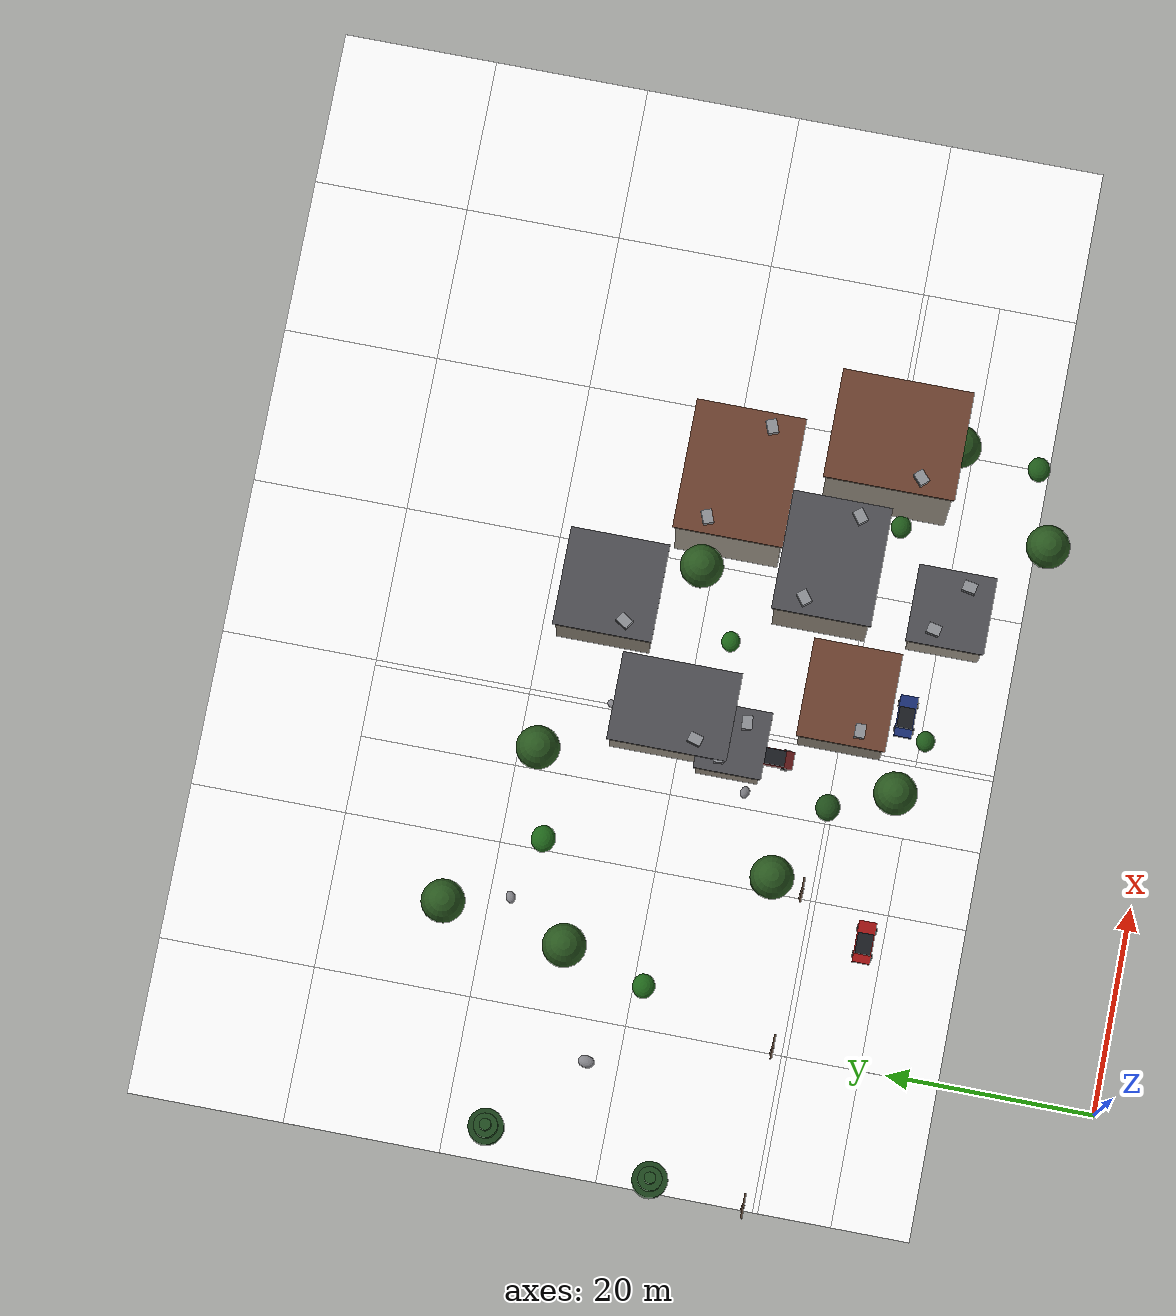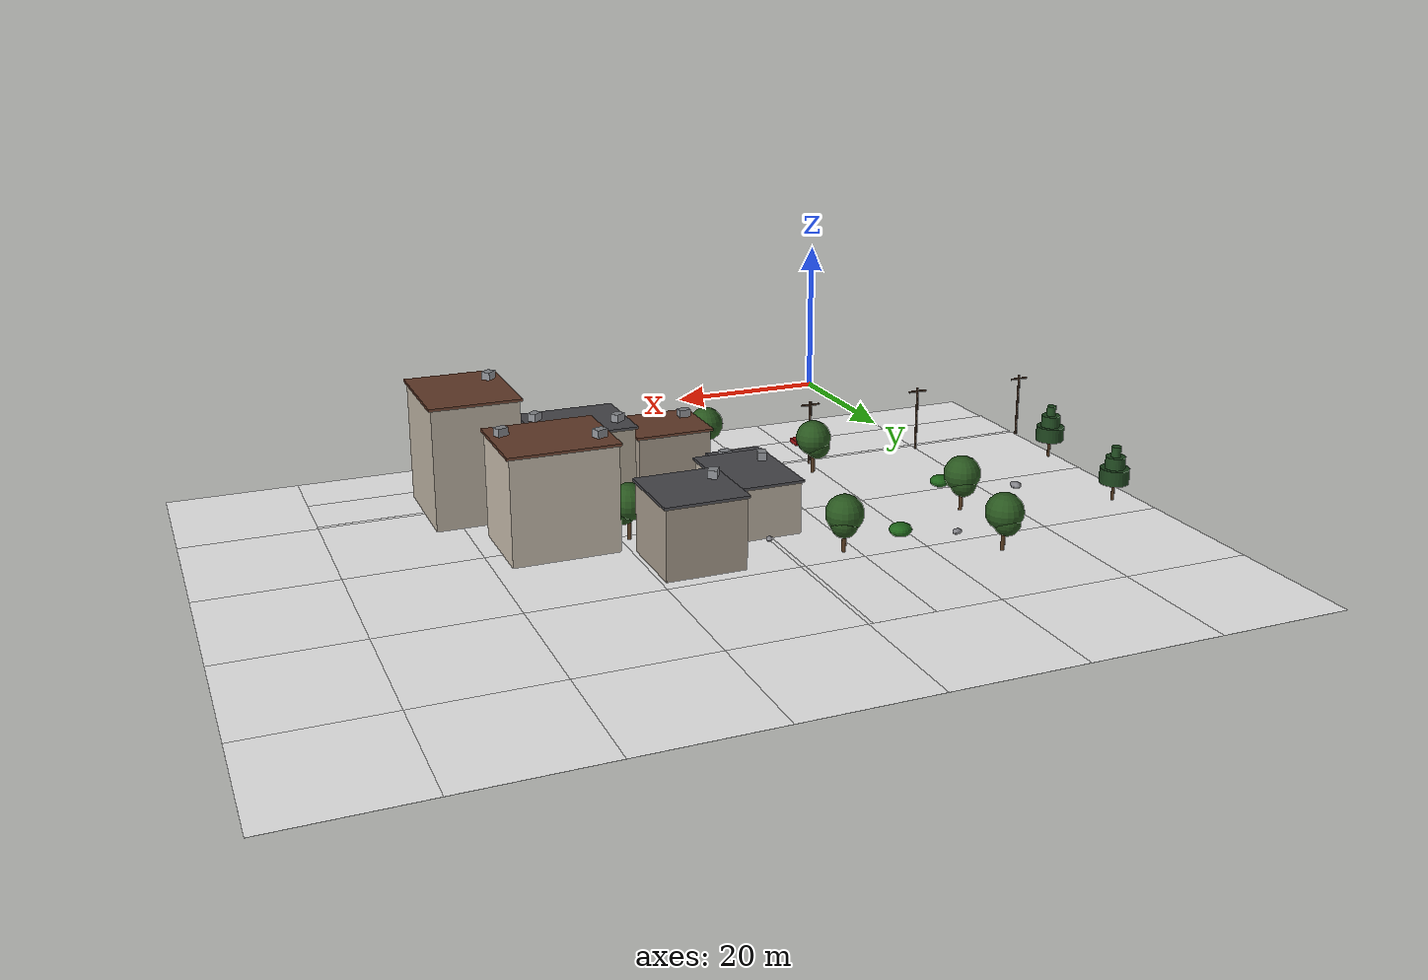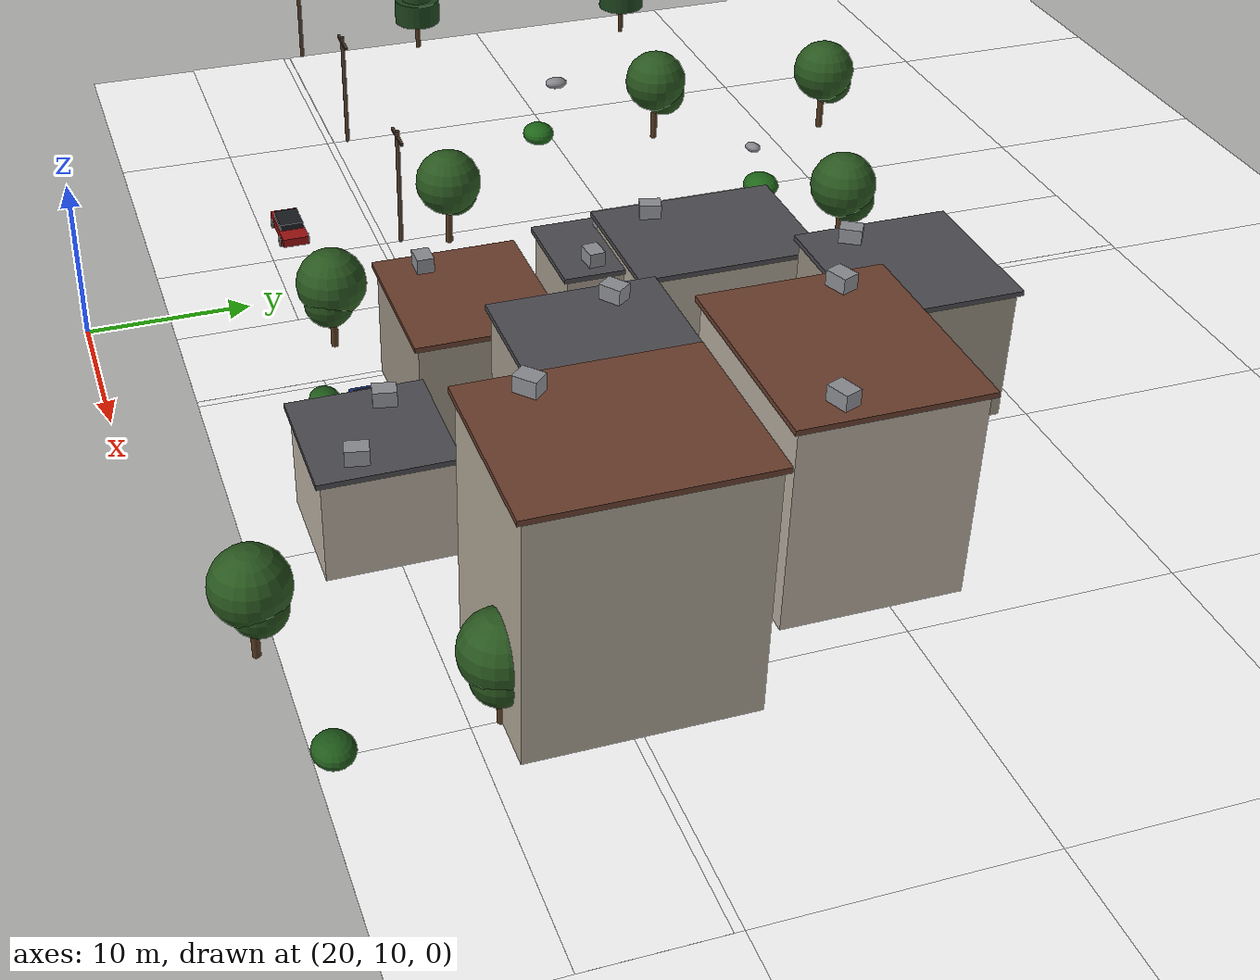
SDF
<sdf version="1.9">
 <world name="iris_runway">
  <model name="ground">
   <static>true</static>
   <link name="link">
    <collision name="c">
     <geometry><plane><normal>0 0 1</normal><size>2000 2000</size></plane></geometry>
    </collision>
   </link>
  </model>
  <include>
   <name>g_5_7</name>
   <pose degrees="true">-7.5 22.5 0.01 0 0 0</pose>
   <uri>model://grass_tile</uri>
  </include>
  <include>
   <name>g_5_8</name>
   <pose degrees="true">-7.5 37.5 0.01 0 0 180</pose>
   <uri>model://grass_tile</uri>
  </include>
  <include>
   <name>g_5_9</name>
   <pose degrees="true">-7.5 52.5 0.01 0 0 0</pose>
   <uri>model://grass_tile</uri>
  </include>
  <include>
   <name>g_5_10</name>
   <pose degrees="true">-7.5 67.5 0.01 0 0 180</pose>
   <uri>model://grass_tile</uri>
  </include>
  <include>
   <name>g_5_11</name>
   <pose degrees="true">-7.5 82.5 0.01 0 0 0</pose>
   <uri>model://grass_tile</uri>
  </include>
  <include>
   <name>g_6_7</name>
   <pose degrees="true">7.5 22.5 0.01 0 0 270</pose>
   <uri>model://grass_tile</uri>
  </include>
  <include>
   <name>g_6_8</name>
   <pose degrees="true">7.5 37.5 0.01 0 0 90</pose>
   <uri>model://grass_tile</uri>
  </include>
  <include>
   <name>g_6_9</name>
   <pose degrees="true">7.5 52.5 0.01 0 0 270</pose>
   <uri>model://grass_tile</uri>
  </include>
  <include>
   <name>g_6_10</name>
   <pose degrees="true">7.5 67.5 0.01 0 0 90</pose>
   <uri>model://grass_tile</uri>
  </include>
  <include>
   <name>g_6_11</name>
   <pose degrees="true">7.5 82.5 0.01 0 0 270</pose>
   <uri>model://grass_tile</uri>
  </include>
  <include>
   <name>g_7_7</name>
   <pose degrees="true">22.5 22.5 0.01 0 0 90</pose>
   <uri>model://grass_tile</uri>
  </include>
  <include>
   <name>g_7_8</name>
   <pose degrees="true">22.5 37.5 0.01 0 0 270</pose>
   <uri>model://grass_tile</uri>
  </include>
  <include>
   <name>g_7_9</name>
   <pose degrees="true">22.5 52.5 0.01 0 0 90</pose>
   <uri>model://grass_tile</uri>
  </include>
  <include>
   <name>g_7_10</name>
   <pose degrees="true">22.5 67.5 0.01 0 0 270</pose>
   <uri>model://grass_tile_worn</uri>
  </include>
  <include>
   <name>g_7_11</name>
   <pose degrees="true">22.5 82.5 0.01 0 0 90</pose>
   <uri>model://grass_tile</uri>
  </include>
  <include>
   <name>g_8_7</name>
   <pose degrees="true">37.5 22.5 0.01 0 0 270</pose>
   <uri>model://grass_tile</uri>
  </include>
  <include>
   <name>g_8_8</name>
   <pose degrees="true">37.5 37.5 0.01 0 0 90</pose>
   <uri>model://grass_tile</uri>
  </include>
  <include>
   <name>g_8_9</name>
   <pose degrees="true">37.5 52.5 0.01 0 0 270</pose>
   <uri>model://grass_tile</uri>
  </include>
  <include>
   <name>g_8_10</name>
   <pose degrees="true">37.5 67.5 0.01 0 0 90</pose>
   <uri>model://grass_tile</uri>
  </include>
  <include>
   <name>g_8_11</name>
   <pose degrees="true">37.5 82.5 0.01 0 0 270</pose>
   <uri>model://grass_tile_worn</uri>
  </include>
  <include>
   <name>g_9_7</name>
   <pose degrees="true">52.5 22.5 0.01 0 0 90</pose>
   <uri>model://grass_tile</uri>
  </include>
  <include>
   <name>g_9_8</name>
   <pose degrees="true">52.5 37.5 0.01 0 0 270</pose>
   <uri>model://grass_tile</uri>
  </include>
  <include>
   <name>g_9_9</name>
   <pose degrees="true">52.5 52.5 0.01 0 0 90</pose>
   <uri>model://grass_tile</uri>
  </include>
  <include>
   <name>g_9_10</name>
   <pose degrees="true">52.5 67.5 0.01 0 0 270</pose>
   <uri>model://grass_tile</uri>
  </include>
  <include>
   <name>g_9_11</name>
   <pose degrees="true">52.5 82.5 0.01 0 0 90</pose>
   <uri>model://grass_tile_worn</uri>
  </include>
  <include>
   <name>g_10_7</name>
   <pose degrees="true">67.5 22.5 0.01 0 0 270</pose>
   <uri>model://grass_tile</uri>
  </include>
  <include>
   <name>g_10_8</name>
   <pose degrees="true">67.5 37.5 0.01 0 0 90</pose>
   <uri>model://grass_tile</uri>
  </include>
  <include>
   <name>g_10_9</name>
   <pose degrees="true">67.5 52.5 0.01 0 0 270</pose>
   <uri>model://grass_tile</uri>
  </include>
  <include>
   <name>g_10_10</name>
   <pose degrees="true">67.5 67.5 0.01 0 0 90</pose>
   <uri>model://grass_tile</uri>
  </include>
  <include>
   <name>g_10_11</name>
   <pose degrees="true">67.5 82.5 0.01 0 0 270</pose>
   <uri>model://grass_tile</uri>
  </include>
  <include>
   <name>g_11_7</name>
   <pose degrees="true">82.5 22.5 0.01 0 0 180</pose>
   <uri>model://grass_tile</uri>
  </include>
  <include>
   <name>g_11_8</name>
   <pose degrees="true">82.5 37.5 0.01 0 0 0</pose>
   <uri>model://grass_tile_worn</uri>
  </include>
  <include>
   <name>g_11_9</name>
   <pose degrees="true">82.5 52.5 0.01 0 0 180</pose>
   <uri>model://grass_tile_worn</uri>
  </include>
  <include>
   <name>g_11_10</name>
   <pose degrees="true">82.5 67.5 0.01 0 0 0</pose>
   <uri>model://grass_tile</uri>
  </include>
  <include>
   <name>g_11_11</name>
   <pose degrees="true">82.5 82.5 0.01 0 0 180</pose>
   <uri>model://grass_tile_worn</uri>
  </include>
  <include><name>tree_0</name><pose>26 24 0 0 0 0.0</pose><uri>model://tree_oak</uri></include>
  <include><name>tree_9</name><pose>-14 40 0 0 0 0.1</pose><uri>model://tree_pine</uri></include>
  <include><name>tree_10</name><pose>48 36 0 0 0 0.8</pose><uri>model://tree_oak</uri></include>
  <include><name>tree_16</name><pose>6 52 0 0 0 1.9</pose><uri>model://tree_oak</uri></include>
  <include><name>tree_18</name><pose>60 24 0 0 0 0.2</pose><uri>model://tree_oak</uri></include>
  <include><name>tree_20</name><pose>24 58 0 0 0 1.6</pose><uri>model://tree_oak</uri></include>
  <include><name>tree_26</name><pose>16 34 0 0 0 2.7</pose><uri>model://tree_oak</uri></include>
  <include><name>tree_28</name><pose>52 14 0 0 0 1.0</pose><uri>model://tree_oak</uri></include>
  <include><name>tree_31</name><pose>-12 56 0 0 0 3.1</pose><uri>model://tree_pine</uri></include>
  <include><name>tree_34</name><pose>8 64 0 0 0 2.1</pose><uri>model://tree_oak</uri></include>
  <include><name>tree_36</name><pose>44 46 0 0 0 0.4</pose><uri>model://tree_oak</uri></include>
  <model name="bldg_0">
   <static>true</static>
   <pose>34 30 0 0 0 0</pose>
   <link name="l">
    <visual name="walls">
     <pose degrees="true">0 0 3.5 0 0 0</pose>
     <geometry><box><size>9 8 7</size></box></geometry>
     <material>
      <ambient>0.34 0.32 0.29 1</ambient>
      <diffuse>0.62 0.58 0.52 1</diffuse>
      <pbr><metal><roughness>0.85</roughness><metalness>0.0</metalness></metal></pbr>
     </material>
    </visual>
    <visual name="roof">
     <pose degrees="true">0 0 7.15 0 0 0</pose>
     <geometry><box><size>9.5 8.5 0.3</size></box></geometry>
     <material>
      <ambient>0.23 0.14 0.10 1</ambient>
      <diffuse>0.42 0.25 0.18 1</diffuse>
      <pbr><metal><roughness>0.9</roughness><metalness>0.0</metalness></metal></pbr>
     </material>
    </visual>
    <collision name="c">
     <pose>0 0 3.65 0 0 0</pose>
     <geometry><box><size>9 8 7.3</size></box></geometry>
    </collision>
    <visual name="ac_0">
     <pose degrees="true">-3.3 -1.6 7.75 0 0 0</pose>
     <geometry><box><size>1.3 1.0 0.9</size></box></geometry>
     <material>
      <ambient>0.30 0.31 0.32 1</ambient>
      <diffuse>0.55 0.56 0.58 1</diffuse>
      <pbr><metal><roughness>0.5</roughness><metalness>0.6</metalness></metal></pbr>
     </material>
    </visual>
   </link>
  </model>
  <model name="bldg_1">
   <static>true</static>
   <pose>46 34 0 0 0 0</pose>
   <link name="l">
    <visual name="walls">
     <pose degrees="true">0 0 5.0 0 0 0</pose>
     <geometry><box><size>11 9 10</size></box></geometry>
     <material>
      <ambient>0.36 0.34 0.31 1</ambient>
      <diffuse>0.66 0.62 0.56 1</diffuse>
      <pbr><metal><roughness>0.85</roughness><metalness>0.0</metalness></metal></pbr>
     </material>
    </visual>
    <visual name="roof">
     <pose degrees="true">0 0 10.15 0 0 0</pose>
     <geometry><box><size>11.5 9.5 0.3</size></box></geometry>
     <material>
      <ambient>0.17 0.17 0.18 1</ambient>
      <diffuse>0.30 0.30 0.32 1</diffuse>
      <pbr><metal><roughness>0.9</roughness><metalness>0.0</metalness></metal></pbr>
     </material>
    </visual>
    <collision name="c">
     <pose>0 0 5.15 0 0 0</pose>
     <geometry><box><size>11 9 10.3</size></box></geometry>
    </collision>
    <visual name="ac_0">
     <pose degrees="true">4.3 -1.9 10.75 0 0 37</pose>
     <geometry><box><size>1.3 1.0 0.9</size></box></geometry>
     <material>
      <ambient>0.30 0.31 0.32 1</ambient>
      <diffuse>0.55 0.56 0.58 1</diffuse>
      <pbr><metal><roughness>0.5</roughness><metalness>0.6</metalness></metal></pbr>
     </material>
    </visual>
    <visual name="ac_1">
     <pose degrees="true">-4.3 1.9 10.75 0 0 37</pose>
     <geometry><box><size>1.3 1.0 0.9</size></box></geometry>
     <material>
      <ambient>0.30 0.31 0.32 1</ambient>
      <diffuse>0.55 0.56 0.58 1</diffuse>
      <pbr><metal><roughness>0.5</roughness><metalness>0.6</metalness></metal></pbr>
     </material>
    </visual>
   </link>
  </model>
  <model name="bldg_2">
   <static>true</static>
   <pose>30 46 0 0 0 0</pose>
   <link name="l">
    <visual name="walls">
     <pose degrees="true">0 0 3.0 0 0 0</pose>
     <geometry><box><size>8 11 6</size></box></geometry>
     <material>
      <ambient>0.39 0.36 0.33 1</ambient>
      <diffuse>0.70 0.66 0.60 1</diffuse>
      <pbr><metal><roughness>0.85</roughness><metalness>0.0</metalness></metal></pbr>
     </material>
    </visual>
    <visual name="roof">
     <pose degrees="true">0 0 6.15 0 0 0</pose>
     <geometry><box><size>8.5 11.5 0.3</size></box></geometry>
     <material>
      <ambient>0.17 0.17 0.18 1</ambient>
      <diffuse>0.30 0.30 0.32 1</diffuse>
      <pbr><metal><roughness>0.9</roughness><metalness>0.0</metalness></metal></pbr>
     </material>
    </visual>
    <collision name="c">
     <pose>0 0 3.15 0 0 0</pose>
     <geometry><box><size>8 11 6.3</size></box></geometry>
    </collision>
    <visual name="ac_0">
     <pose degrees="true">-2.8 -2.5 6.75 0 0 74</pose>
     <geometry><box><size>1.3 1.0 0.9</size></box></geometry>
     <material>
      <ambient>0.30 0.31 0.32 1</ambient>
      <diffuse>0.55 0.56 0.58 1</diffuse>
      <pbr><metal><roughness>0.5</roughness><metalness>0.6</metalness></metal></pbr>
     </material>
    </visual>
   </link>
  </model>
  <model name="bldg_3">
   <static>true</static>
   <pose>52 44 0 0 0 0</pose>
   <link name="l">
    <visual name="walls">
     <pose degrees="true">0 0 6.0 0 0 0</pose>
     <geometry><box><size>12 10 12</size></box></geometry>
     <material>
      <ambient>0.41 0.39 0.35 1</ambient>
      <diffuse>0.74 0.70 0.64 1</diffuse>
      <pbr><metal><roughness>0.85</roughness><metalness>0.0</metalness></metal></pbr>
     </material>
    </visual>
    <visual name="roof">
     <pose degrees="true">0 0 12.15 0 0 0</pose>
     <geometry><box><size>12.5 10.5 0.3</size></box></geometry>
     <material>
      <ambient>0.23 0.14 0.10 1</ambient>
      <diffuse>0.42 0.25 0.18 1</diffuse>
      <pbr><metal><roughness>0.9</roughness><metalness>0.0</metalness></metal></pbr>
     </material>
    </visual>
    <collision name="c">
     <pose>0 0 6.15 0 0 0</pose>
     <geometry><box><size>12 10 12.3</size></box></geometry>
    </collision>
    <visual name="ac_0">
     <pose degrees="true">4.8 -2.2 12.75 0 0 21</pose>
     <geometry><box><size>1.3 1.0 0.9</size></box></geometry>
     <material>
      <ambient>0.30 0.31 0.32 1</ambient>
      <diffuse>0.55 0.56 0.58 1</diffuse>
      <pbr><metal><roughness>0.5</roughness><metalness>0.6</metalness></metal></pbr>
     </material>
    </visual>
    <visual name="ac_1">
     <pose degrees="true">-4.8 2.2 12.75 0 0 21</pose>
     <geometry><box><size>1.3 1.0 0.9</size></box></geometry>
     <material>
      <ambient>0.30 0.31 0.32 1</ambient>
      <diffuse>0.55 0.56 0.58 1</diffuse>
      <pbr><metal><roughness>0.5</roughness><metalness>0.6</metalness></metal></pbr>
     </material>
    </visual>
   </link>
  </model>
  <model name="bldg_4">
   <static>true</static>
   <pose>40 54 0 0 0 0</pose>
   <link name="l">
    <visual name="walls">
     <pose degrees="true">0 0 4.0 0 0 0</pose>
     <geometry><box><size>9 9 8</size></box></geometry>
     <material>
      <ambient>0.34 0.32 0.29 1</ambient>
      <diffuse>0.62 0.58 0.52 1</diffuse>
      <pbr><metal><roughness>0.85</roughness><metalness>0.0</metalness></metal></pbr>
     </material>
    </visual>
    <visual name="roof">
     <pose degrees="true">0 0 8.15 0 0 0</pose>
     <geometry><box><size>9.5 9.5 0.3</size></box></geometry>
     <material>
      <ambient>0.17 0.17 0.18 1</ambient>
      <diffuse>0.30 0.30 0.32 1</diffuse>
      <pbr><metal><roughness>0.9</roughness><metalness>0.0</metalness></metal></pbr>
     </material>
    </visual>
    <collision name="c">
     <pose>0 0 4.15 0 0 0</pose>
     <geometry><box><size>9 9 8.3</size></box></geometry>
    </collision>
    <visual name="ac_0">
     <pose degrees="true">-3.3 -1.9 8.75 0 0 58</pose>
     <geometry><box><size>1.3 1.0 0.9</size></box></geometry>
     <material>
      <ambient>0.30 0.31 0.32 1</ambient>
      <diffuse>0.55 0.56 0.58 1</diffuse>
      <pbr><metal><roughness>0.5</roughness><metalness>0.6</metalness></metal></pbr>
     </material>
    </visual>
   </link>
  </model>
  <model name="bldg_5">
   <static>true</static>
   <pose>28 40 0 0 0 0</pose>
   <link name="l">
    <visual name="walls">
     <pose degrees="true">0 0 2.5 0 0 0</pose>
     <geometry><box><size>6 6 5</size></box></geometry>
     <material>
      <ambient>0.36 0.34 0.31 1</ambient>
      <diffuse>0.66 0.62 0.56 1</diffuse>
      <pbr><metal><roughness>0.85</roughness><metalness>0.0</metalness></metal></pbr>
     </material>
    </visual>
    <visual name="roof">
     <pose degrees="true">0 0 5.15 0 0 0</pose>
     <geometry><box><size>6.5 6.5 0.3</size></box></geometry>
     <material>
      <ambient>0.17 0.17 0.18 1</ambient>
      <diffuse>0.30 0.30 0.32 1</diffuse>
      <pbr><metal><roughness>0.9</roughness><metalness>0.0</metalness></metal></pbr>
     </material>
    </visual>
    <collision name="c">
     <pose>0 0 2.65 0 0 0</pose>
     <geometry><box><size>6 6 5.3</size></box></geometry>
    </collision>
    <visual name="ac_0">
     <pose degrees="true">1.8 -1.0 5.75 0 0 5</pose>
     <geometry><box><size>1.3 1.0 0.9</size></box></geometry>
     <material>
      <ambient>0.30 0.31 0.32 1</ambient>
      <diffuse>0.55 0.56 0.58 1</diffuse>
      <pbr><metal><roughness>0.5</roughness><metalness>0.6</metalness></metal></pbr>
     </material>
    </visual>
    <visual name="ac_1">
     <pose degrees="true">-1.8 1.0 5.75 0 0 5</pose>
     <geometry><box><size>1.3 1.0 0.9</size></box></geometry>
     <material>
      <ambient>0.30 0.31 0.32 1</ambient>
      <diffuse>0.55 0.56 0.58 1</diffuse>
      <pbr><metal><roughness>0.5</roughness><metalness>0.6</metalness></metal></pbr>
     </material>
    </visual>
   </link>
  </model>
  <model name="bldg_6">
   <static>true</static>
   <pose>58 30 0 0 0 0</pose>
   <link name="l">
    <visual name="walls">
     <pose degrees="true">0 0 7.0 0 0 0</pose>
     <geometry><box><size>10 12 14</size></box></geometry>
     <material>
      <ambient>0.39 0.36 0.33 1</ambient>
      <diffuse>0.70 0.66 0.60 1</diffuse>
      <pbr><metal><roughness>0.85</roughness><metalness>0.0</metalness></metal></pbr>
     </material>
    </visual>
    <visual name="roof">
     <pose degrees="true">0 0 14.15 0 0 0</pose>
     <geometry><box><size>10.5 12.5 0.3</size></box></geometry>
     <material>
      <ambient>0.23 0.14 0.10 1</ambient>
      <diffuse>0.42 0.25 0.18 1</diffuse>
      <pbr><metal><roughness>0.9</roughness><metalness>0.0</metalness></metal></pbr>
     </material>
    </visual>
    <collision name="c">
     <pose>0 0 7.15 0 0 0</pose>
     <geometry><box><size>10 12 14.3</size></box></geometry>
    </collision>
    <visual name="ac_0">
     <pose degrees="true">-3.8 -2.8 14.75 0 0 42</pose>
     <geometry><box><size>1.3 1.0 0.9</size></box></geometry>
     <material>
      <ambient>0.30 0.31 0.32 1</ambient>
      <diffuse>0.55 0.56 0.58 1</diffuse>
      <pbr><metal><roughness>0.5</roughness><metalness>0.6</metalness></metal></pbr>
     </material>
    </visual>
   </link>
  </model>
  <model name="bldg_7">
   <static>true</static>
   <pose>44 22 0 0 0 0</pose>
   <link name="l">
    <visual name="walls">
     <pose degrees="true">0 0 3.0 0 0 0</pose>
     <geometry><box><size>7 7 6</size></box></geometry>
     <material>
      <ambient>0.41 0.39 0.35 1</ambient>
      <diffuse>0.74 0.70 0.64 1</diffuse>
      <pbr><metal><roughness>0.85</roughness><metalness>0.0</metalness></metal></pbr>
     </material>
    </visual>
    <visual name="roof">
     <pose degrees="true">0 0 6.15 0 0 0</pose>
     <geometry><box><size>7.5 7.5 0.3</size></box></geometry>
     <material>
      <ambient>0.17 0.17 0.18 1</ambient>
      <diffuse>0.30 0.30 0.32 1</diffuse>
      <pbr><metal><roughness>0.9</roughness><metalness>0.0</metalness></metal></pbr>
     </material>
    </visual>
    <collision name="c">
     <pose>0 0 3.15 0 0 0</pose>
     <geometry><box><size>7 7 6.3</size></box></geometry>
    </collision>
    <visual name="ac_0">
     <pose degrees="true">2.3 -1.3 6.75 0 0 79</pose>
     <geometry><box><size>1.3 1.0 0.9</size></box></geometry>
     <material>
      <ambient>0.30 0.31 0.32 1</ambient>
      <diffuse>0.55 0.56 0.58 1</diffuse>
      <pbr><metal><roughness>0.5</roughness><metalness>0.6</metalness></metal></pbr>
     </material>
    </visual>
    <visual name="ac_1">
     <pose degrees="true">-2.3 1.3 6.75 0 0 79</pose>
     <geometry><box><size>1.3 1.0 0.9</size></box></geometry>
     <material>
      <ambient>0.30 0.31 0.32 1</ambient>
      <diffuse>0.55 0.56 0.58 1</diffuse>
      <pbr><metal><roughness>0.5</roughness><metalness>0.6</metalness></metal></pbr>
     </material>
    </visual>
   </link>
  </model>
  <model name="pole_2">
   <static>true</static>
   <pose>-15 31 0 0 0 0</pose>
   <link name="l">
    <visual name="p">
     <pose>0 0 4 0 0 0</pose>
     <geometry><cylinder><radius>0.14</radius><length>8</length></cylinder></geometry>
     <material>
      <ambient>0.17 0.12 0.09 1</ambient>
      <diffuse>0.30 0.22 0.16 1</diffuse>
      <pbr><metal><roughness>0.95</roughness><metalness>0.0</metalness></metal></pbr>
     </material>
    </visual>
    <visual name="bar">
     <pose degrees="true">0 0 7.6 0 0 0</pose>
     <geometry><box><size>2.4 0.18 0.18</size></box></geometry>
     <material>
      <ambient>0.17 0.12 0.09 1</ambient>
      <diffuse>0.30 0.22 0.16 1</diffuse>
      <pbr><metal><roughness>0.95</roughness><metalness>0.0</metalness></metal></pbr>
     </material>
    </visual>
    <collision name="c">
     <pose>0 0 4 0 0 0</pose>
     <geometry><cylinder><radius>0.2</radius><length>8</length></cylinder></geometry>
    </collision>
   </link>
  </model>
  <model name="pole_3">
   <static>true</static>
   <pose>0 31 0 0 0 0</pose>
   <link name="l">
    <visual name="p">
     <pose>0 0 4 0 0 0</pose>
     <geometry><cylinder><radius>0.14</radius><length>8</length></cylinder></geometry>
     <material>
      <ambient>0.17 0.12 0.09 1</ambient>
      <diffuse>0.30 0.22 0.16 1</diffuse>
      <pbr><metal><roughness>0.95</roughness><metalness>0.0</metalness></metal></pbr>
     </material>
    </visual>
    <visual name="bar">
     <pose degrees="true">0 0 7.6 0 0 0</pose>
     <geometry><box><size>2.4 0.18 0.18</size></box></geometry>
     <material>
      <ambient>0.17 0.12 0.09 1</ambient>
      <diffuse>0.30 0.22 0.16 1</diffuse>
      <pbr><metal><roughness>0.95</roughness><metalness>0.0</metalness></metal></pbr>
     </material>
    </visual>
    <collision name="c">
     <pose>0 0 4 0 0 0</pose>
     <geometry><cylinder><radius>0.2</radius><length>8</length></cylinder></geometry>
    </collision>
   </link>
  </model>
  <model name="pole_4">
   <static>true</static>
   <pose>15 31 0 0 0 0</pose>
   <link name="l">
    <visual name="p">
     <pose>0 0 4 0 0 0</pose>
     <geometry><cylinder><radius>0.14</radius><length>8</length></cylinder></geometry>
     <material>
      <ambient>0.17 0.12 0.09 1</ambient>
      <diffuse>0.30 0.22 0.16 1</diffuse>
      <pbr><metal><roughness>0.95</roughness><metalness>0.0</metalness></metal></pbr>
     </material>
    </visual>
    <visual name="bar">
     <pose degrees="true">0 0 7.6 0 0 0</pose>
     <geometry><box><size>2.4 0.18 0.18</size></box></geometry>
     <material>
      <ambient>0.17 0.12 0.09 1</ambient>
      <diffuse>0.30 0.22 0.16 1</diffuse>
      <pbr><metal><roughness>0.95</roughness><metalness>0.0</metalness></metal></pbr>
     </material>
    </visual>
    <collision name="c">
     <pose>0 0 4 0 0 0</pose>
     <geometry><cylinder><radius>0.2</radius><length>8</length></cylinder></geometry>
    </collision>
   </link>
  </model>
  <model name="pole_5">
   <static>true</static>
   <pose>45 31 0 0 0 0</pose>
   <link name="l">
    <visual name="p">
     <pose>0 0 4 0 0 0</pose>
     <geometry><cylinder><radius>0.14</radius><length>8</length></cylinder></geometry>
     <material>
      <ambient>0.17 0.12 0.09 1</ambient>
      <diffuse>0.30 0.22 0.16 1</diffuse>
      <pbr><metal><roughness>0.95</roughness><metalness>0.0</metalness></metal></pbr>
     </material>
    </visual>
    <visual name="bar">
     <pose degrees="true">0 0 7.6 0 0 0</pose>
     <geometry><box><size>2.4 0.18 0.18</size></box></geometry>
     <material>
      <ambient>0.17 0.12 0.09 1</ambient>
      <diffuse>0.30 0.22 0.16 1</diffuse>
      <pbr><metal><roughness>0.95</roughness><metalness>0.0</metalness></metal></pbr>
     </material>
    </visual>
    <collision name="c">
     <pose>0 0 4 0 0 0</pose>
     <geometry><cylinder><radius>0.2</radius><length>8</length></cylinder></geometry>
    </collision>
   </link>
  </model>
  <model name="pole_6">
   <static>true</static>
   <pose>60 31 0 0 0 0</pose>
   <link name="l">
    <visual name="p">
     <pose>0 0 4 0 0 0</pose>
     <geometry><cylinder><radius>0.14</radius><length>8</length></cylinder></geometry>
     <material>
      <ambient>0.17 0.12 0.09 1</ambient>
      <diffuse>0.30 0.22 0.16 1</diffuse>
      <pbr><metal><roughness>0.95</roughness><metalness>0.0</metalness></metal></pbr>
     </material>
    </visual>
    <visual name="bar">
     <pose degrees="true">0 0 7.6 0 0 0</pose>
     <geometry><box><size>2.4 0.18 0.18</size></box></geometry>
     <material>
      <ambient>0.17 0.12 0.09 1</ambient>
      <diffuse>0.30 0.22 0.16 1</diffuse>
      <pbr><metal><roughness>0.95</roughness><metalness>0.0</metalness></metal></pbr>
     </material>
    </visual>
    <collision name="c">
     <pose>0 0 4 0 0 0</pose>
     <geometry><cylinder><radius>0.2</radius><length>8</length></cylinder></geometry>
    </collision>
   </link>
  </model>
  <include>
   <name>road_0_4</name>
   <pose degrees="true">-7.5 26.0 0.020 0 0 0</pose>
   <uri>model://road_tile</uri>
  </include>
  <include>
   <name>road_0_5</name>
   <pose degrees="true">7.5 26.0 0.020 0 0 0</pose>
   <uri>model://road_tile</uri>
  </include>
  <include>
   <name>road_0_6</name>
   <pose degrees="true">22.5 26.0 0.020 0 0 0</pose>
   <uri>model://road_tile</uri>
  </include>
  <include>
   <name>road_0_7</name>
   <pose degrees="true">37.5 26.0 0.020 0 0 0</pose>
   <uri>model://road_tile</uri>
  </include>
  <include>
   <name>road_0_8</name>
   <pose degrees="true">52.5 26.0 0.020 0 0 0</pose>
   <uri>model://road_tile</uri>
  </include>
  <include>
   <name>road_0_9</name>
   <pose degrees="true">67.5 26.0 0.020 0 0 0</pose>
   <uri>model://road_tile</uri>
  </include>
  <include>
   <name>road_2_6</name>
   <pose degrees="true">26.0 22.5 0.022 0 0 90</pose>
   <uri>model://road_tile</uri>
  </include>
  <include>
   <name>road_2_7</name>
   <pose degrees="true">26.0 37.5 0.022 0 0 90</pose>
   <uri>model://road_tile</uri>
  </include>
  <include>
   <name>road_2_8</name>
   <pose degrees="true">26.0 52.5 0.022 0 0 90</pose>
   <uri>model://road_tile</uri>
  </include>
  <include>
   <name>road_2_9</name>
   <pose degrees="true">26.0 67.5 0.022 0 0 90</pose>
   <uri>model://road_tile</uri>
  </include>
  <model name="car_0">
   <static>true</static>
   <pose degrees="true">12 24.25 0 0 0 0</pose>
   <link name="l">
    <visual name="body">
     <pose degrees="true">0 0 0.55 0 0 0</pose>
     <geometry><box><size>4.0 1.7 0.55</size></box></geometry>
     <material>
      <ambient>0.34 0.04 0.04 1</ambient>
      <diffuse>0.62 0.07 0.07 1</diffuse>
      <pbr><metal><roughness>0.35</roughness><metalness>0.3</metalness></metal></pbr>
     </material>
    </visual>
    <visual name="cabin">
     <pose degrees="true">-0.2 0 1.02 0 0 0</pose>
     <geometry><box><size>2.0 1.5 0.45</size></box></geometry>
     <material>
      <ambient>0.06 0.06 0.07 1</ambient>
      <diffuse>0.10 0.11 0.13 1</diffuse>
      <pbr><metal><roughness>0.25</roughness><metalness>0.2</metalness></metal></pbr>
     </material>
    </visual>
    <visual name="w0">
     <pose>1.25 0.85 0.32 1.5708 0 0</pose>
     <geometry><cylinder><radius>0.32</radius><length>0.24</length></cylinder></geometry>
     <material>
      <ambient>0.04 0.04 0.04 1</ambient>
      <diffuse>0.08 0.08 0.08 1</diffuse>
      <pbr><metal><roughness>0.95</roughness><metalness>0.0</metalness></metal></pbr>
     </material>
    </visual>
    <visual name="w1">
     <pose>1.25 -0.85 0.32 1.5708 0 0</pose>
     <geometry><cylinder><radius>0.32</radius><length>0.24</length></cylinder></geometry>
     <material>
      <ambient>0.04 0.04 0.04 1</ambient>
      <diffuse>0.08 0.08 0.08 1</diffuse>
      <pbr><metal><roughness>0.95</roughness><metalness>0.0</metalness></metal></pbr>
     </material>
    </visual>
    <visual name="w2">
     <pose>-1.25 0.85 0.32 1.5708 0 0</pose>
     <geometry><cylinder><radius>0.32</radius><length>0.24</length></cylinder></geometry>
     <material>
      <ambient>0.04 0.04 0.04 1</ambient>
      <diffuse>0.08 0.08 0.08 1</diffuse>
      <pbr><metal><roughness>0.95</roughness><metalness>0.0</metalness></metal></pbr>
     </material>
    </visual>
    <visual name="w3">
     <pose>-1.25 -0.85 0.32 1.5708 0 0</pose>
     <geometry><cylinder><radius>0.32</radius><length>0.24</length></cylinder></geometry>
     <material>
      <ambient>0.04 0.04 0.04 1</ambient>
      <diffuse>0.08 0.08 0.08 1</diffuse>
      <pbr><metal><roughness>0.95</roughness><metalness>0.0</metalness></metal></pbr>
     </material>
    </visual>
   </link>
  </model>
  <model name="car_2">
   <static>true</static>
   <pose degrees="true">34 24.25 0 0 0 0</pose>
   <link name="l">
    <visual name="body">
     <pose degrees="true">0 0 0.55 0 0 0</pose>
     <geometry><box><size>4.0 1.7 0.55</size></box></geometry>
     <material>
      <ambient>0.06 0.10 0.25 1</ambient>
      <diffuse>0.10 0.18 0.45 1</diffuse>
      <pbr><metal><roughness>0.35</roughness><metalness>0.3</metalness></metal></pbr>
     </material>
    </visual>
    <visual name="cabin">
     <pose degrees="true">-0.2 0 1.02 0 0 0</pose>
     <geometry><box><size>2.0 1.5 0.45</size></box></geometry>
     <material>
      <ambient>0.06 0.06 0.07 1</ambient>
      <diffuse>0.10 0.11 0.13 1</diffuse>
      <pbr><metal><roughness>0.25</roughness><metalness>0.2</metalness></metal></pbr>
     </material>
    </visual>
    <visual name="w0">
     <pose>1.25 0.85 0.32 1.5708 0 0</pose>
     <geometry><cylinder><radius>0.32</radius><length>0.24</length></cylinder></geometry>
     <material>
      <ambient>0.04 0.04 0.04 1</ambient>
      <diffuse>0.08 0.08 0.08 1</diffuse>
      <pbr><metal><roughness>0.95</roughness><metalness>0.0</metalness></metal></pbr>
     </material>
    </visual>
    <visual name="w1">
     <pose>1.25 -0.85 0.32 1.5708 0 0</pose>
     <geometry><cylinder><radius>0.32</radius><length>0.24</length></cylinder></geometry>
     <material>
      <ambient>0.04 0.04 0.04 1</ambient>
      <diffuse>0.08 0.08 0.08 1</diffuse>
      <pbr><metal><roughness>0.95</roughness><metalness>0.0</metalness></metal></pbr>
     </material>
    </visual>
    <visual name="w2">
     <pose>-1.25 0.85 0.32 1.5708 0 0</pose>
     <geometry><cylinder><radius>0.32</radius><length>0.24</length></cylinder></geometry>
     <material>
      <ambient>0.04 0.04 0.04 1</ambient>
      <diffuse>0.08 0.08 0.08 1</diffuse>
      <pbr><metal><roughness>0.95</roughness><metalness>0.0</metalness></metal></pbr>
     </material>
    </visual>
    <visual name="w3">
     <pose>-1.25 -0.85 0.32 1.5708 0 0</pose>
     <geometry><cylinder><radius>0.32</radius><length>0.24</length></cylinder></geometry>
     <material>
      <ambient>0.04 0.04 0.04 1</ambient>
      <diffuse>0.08 0.08 0.08 1</diffuse>
      <pbr><metal><roughness>0.95</roughness><metalness>0.0</metalness></metal></pbr>
     </material>
    </visual>
   </link>
  </model>
  <model name="car_6">
   <static>true</static>
   <pose degrees="true">27.75 36 0 0 0 90</pose>
   <link name="l">
    <visual name="body">
     <pose degrees="true">0 0 0.55 0 0 0</pose>
     <geometry><box><size>4.0 1.7 0.55</size></box></geometry>
     <material>
      <ambient>0.19 0.04 0.04 1</ambient>
      <diffuse>0.35 0.08 0.08 1</diffuse>
      <pbr><metal><roughness>0.35</roughness><metalness>0.3</metalness></metal></pbr>
     </material>
    </visual>
    <visual name="cabin">
     <pose degrees="true">-0.2 0 1.02 0 0 0</pose>
     <geometry><box><size>2.0 1.5 0.45</size></box></geometry>
     <material>
      <ambient>0.06 0.06 0.07 1</ambient>
      <diffuse>0.10 0.11 0.13 1</diffuse>
      <pbr><metal><roughness>0.25</roughness><metalness>0.2</metalness></metal></pbr>
     </material>
    </visual>
    <visual name="w0">
     <pose>1.25 0.85 0.32 1.5708 0 0</pose>
     <geometry><cylinder><radius>0.32</radius><length>0.24</length></cylinder></geometry>
     <material>
      <ambient>0.04 0.04 0.04 1</ambient>
      <diffuse>0.08 0.08 0.08 1</diffuse>
      <pbr><metal><roughness>0.95</roughness><metalness>0.0</metalness></metal></pbr>
     </material>
    </visual>
    <visual name="w1">
     <pose>1.25 -0.85 0.32 1.5708 0 0</pose>
     <geometry><cylinder><radius>0.32</radius><length>0.24</length></cylinder></geometry>
     <material>
      <ambient>0.04 0.04 0.04 1</ambient>
      <diffuse>0.08 0.08 0.08 1</diffuse>
      <pbr><metal><roughness>0.95</roughness><metalness>0.0</metalness></metal></pbr>
     </material>
    </visual>
    <visual name="w2">
     <pose>-1.25 0.85 0.32 1.5708 0 0</pose>
     <geometry><cylinder><radius>0.32</radius><length>0.24</length></cylinder></geometry>
     <material>
      <ambient>0.04 0.04 0.04 1</ambient>
      <diffuse>0.08 0.08 0.08 1</diffuse>
      <pbr><metal><roughness>0.95</roughness><metalness>0.0</metalness></metal></pbr>
     </material>
    </visual>
    <visual name="w3">
     <pose>-1.25 -0.85 0.32 1.5708 0 0</pose>
     <geometry><cylinder><radius>0.32</radius><length>0.24</length></cylinder></geometry>
     <material>
      <ambient>0.04 0.04 0.04 1</ambient>
      <diffuse>0.08 0.08 0.08 1</diffuse>
      <pbr><metal><roughness>0.95</roughness><metalness>0.0</metalness></metal></pbr>
     </material>
    </visual>
   </link>
  </model>
  <model name="bush_0">
   <static>true</static>
   <pose>24 30 0.59 0 0 0</pose>
   <link name="l">
    <visual name="v">
     <geometry><ellipsoid><radii>1.3 1.17 0.78</radii></ellipsoid></geometry>
     <material>
      <ambient>0.07 0.17 0.06 1</ambient>
      <diffuse>0.12 0.30 0.10 1</diffuse>
      <pbr><metal><roughness>0.95</roughness><metalness>0.0</metalness></metal></pbr>
     </material>
    </visual>
   </link>
  </model>
  <model name="bush_1">
   <static>true</static>
   <pose>32 22 0.45 0 0 0</pose>
   <link name="l">
    <visual name="v">
     <geometry><ellipsoid><radii>1.0 0.90 0.60</radii></ellipsoid></geometry>
     <material>
      <ambient>0.07 0.19 0.06 1</ambient>
      <diffuse>0.12 0.35 0.10 1</diffuse>
      <pbr><metal><roughness>0.95</roughness><metalness>0.0</metalness></metal></pbr>
     </material>
    </visual>
   </link>
  </model>
  <model name="bush_8">
   <static>true</static>
   <pose>4 44 0.54 0 0 0</pose>
   <link name="l">
    <visual name="v">
     <geometry><ellipsoid><radii>1.2 1.08 0.72</radii></ellipsoid></geometry>
     <material>
      <ambient>0.07 0.22 0.06 1</ambient>
      <diffuse>0.12 0.40 0.10 1</diffuse>
      <pbr><metal><roughness>0.95</roughness><metalness>0.0</metalness></metal></pbr>
     </material>
    </visual>
   </link>
  </model>
  <model name="bush_10">
   <static>true</static>
   <pose>52 28 0.50 0 0 0</pose>
   <link name="l">
    <visual name="v">
     <geometry><ellipsoid><radii>1.1 0.99 0.66</radii></ellipsoid></geometry>
     <material>
      <ambient>0.07 0.19 0.06 1</ambient>
      <diffuse>0.12 0.35 0.10 1</diffuse>
      <pbr><metal><roughness>0.95</roughness><metalness>0.0</metalness></metal></pbr>
     </material>
    </visual>
   </link>
  </model>
  <model name="bush_14">
   <static>true</static>
   <pose>16 56 0.59 0 0 0</pose>
   <link name="l">
    <visual name="v">
     <geometry><ellipsoid><radii>1.3 1.17 0.78</radii></ellipsoid></geometry>
     <material>
      <ambient>0.07 0.22 0.06 1</ambient>
      <diffuse>0.12 0.40 0.10 1</diffuse>
      <pbr><metal><roughness>0.95</roughness><metalness>0.0</metalness></metal></pbr>
     </material>
    </visual>
   </link>
  </model>
  <model name="bush_20">
   <static>true</static>
   <pose>38 42 0.45 0 0 0</pose>
   <link name="l">
    <visual name="v">
     <geometry><ellipsoid><radii>1.0 0.90 0.60</radii></ellipsoid></geometry>
     <material>
      <ambient>0.07 0.22 0.06 1</ambient>
      <diffuse>0.12 0.40 0.10 1</diffuse>
      <pbr><metal><roughness>0.95</roughness><metalness>0.0</metalness></metal></pbr>
     </material>
    </visual>
   </link>
  </model>
  <model name="bush_22">
   <static>true</static>
   <pose>60 16 0.54 0 0 0</pose>
   <link name="l">
    <visual name="v">
     <geometry><ellipsoid><radii>1.2 1.08 0.72</radii></ellipsoid></geometry>
     <material>
      <ambient>0.07 0.19 0.06 1</ambient>
      <diffuse>0.12 0.35 0.10 1</diffuse>
      <pbr><metal><roughness>0.95</roughness><metalness>0.0</metalness></metal></pbr>
     </material>
    </visual>
   </link>
  </model>
  <model name="rock_2">
   <static>true</static>
   <pose degrees="true">38 30 0.14 0 0 106</pose>
   <link name="l">
    <visual name="v">
     <geometry><ellipsoid><radii>0.4 0.30 0.20</radii></ellipsoid></geometry>
     <material>
      <ambient>0.29 0.29 0.30 1</ambient>
      <diffuse>0.52 0.52 0.54 1</diffuse>
      <pbr><metal><roughness>0.98</roughness><metalness>0.0</metalness></metal></pbr>
     </material>
    </visual>
   </link>
  </model>
  <model name="rock_5">
   <static>true</static>
   <pose degrees="true">-4 48 0.28 0 0 85</pose>
   <link name="l">
    <visual name="v">
     <geometry><ellipsoid><radii>0.8 0.60 0.40</radii></ellipsoid></geometry>
     <material>
      <ambient>0.29 0.29 0.30 1</ambient>
      <diffuse>0.52 0.52 0.54 1</diffuse>
      <pbr><metal><roughness>0.98</roughness><metalness>0.0</metalness></metal></pbr>
     </material>
    </visual>
   </link>
  </model>
  <model name="rock_8">
   <static>true</static>
   <pose degrees="true">30 52 0.17 0 0 64</pose>
   <link name="l">
    <visual name="v">
     <geometry><ellipsoid><radii>0.5 0.38 0.25</radii></ellipsoid></geometry>
     <material>
      <ambient>0.29 0.29 0.30 1</ambient>
      <diffuse>0.52 0.52 0.54 1</diffuse>
      <pbr><metal><roughness>0.98</roughness><metalness>0.0</metalness></metal></pbr>
     </material>
    </visual>
   </link>
  </model>
  <model name="rock_10">
   <static>true</static>
   <pose degrees="true">24 38 0.21 0 0 170</pose>
   <link name="l">
    <visual name="v">
     <geometry><ellipsoid><radii>0.6 0.45 0.30</radii></ellipsoid></geometry>
     <material>
      <ambient>0.26 0.26 0.27 1</ambient>
      <diffuse>0.47 0.47 0.49 1</diffuse>
      <pbr><metal><roughness>0.98</roughness><metalness>0.0</metalness></metal></pbr>
     </material>
    </visual>
   </link>
  </model>
  <model name="rock_14">
   <static>true</static>
   <pose degrees="true">10 58 0.21 0 0 22</pose>
   <link name="l">
    <visual name="v">
     <geometry><ellipsoid><radii>0.6 0.45 0.30</radii></ellipsoid></geometry>
     <material>
      <ambient>0.29 0.29 0.30 1</ambient>
      <diffuse>0.52 0.52 0.54 1</diffuse>
      <pbr><metal><roughness>0.98</roughness><metalness>0.0</metalness></metal></pbr>
     </material>
    </visual>
   </link>
  </model>
 </world>
</sdf>
